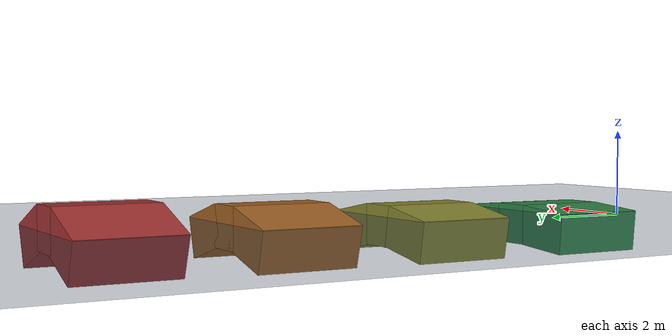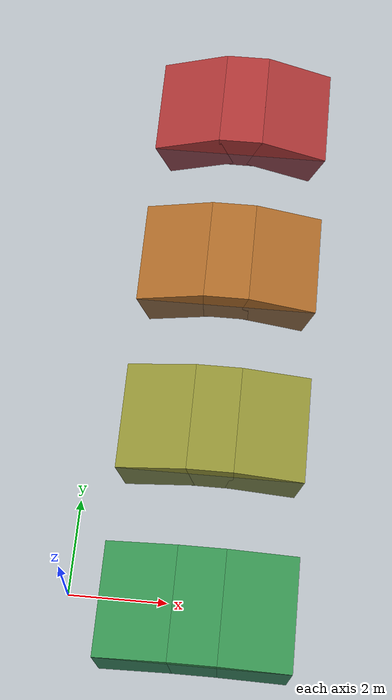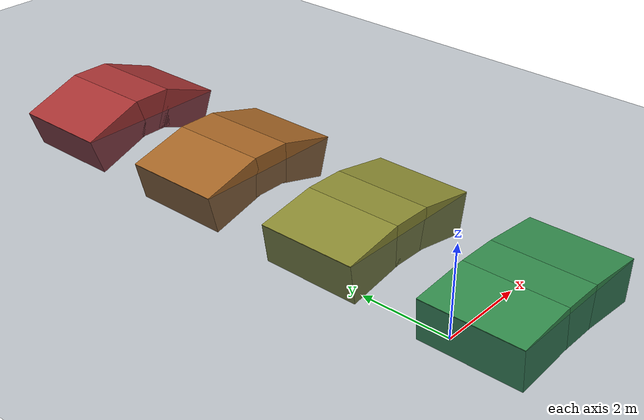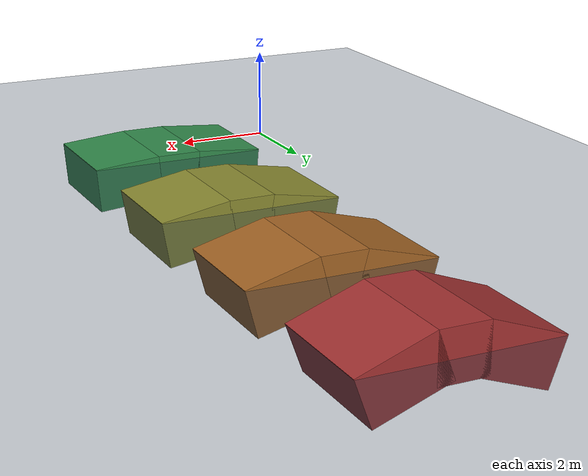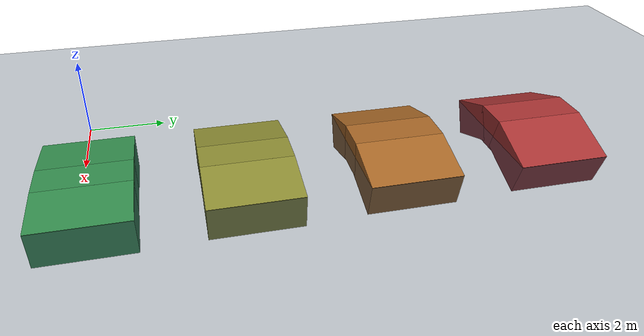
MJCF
<mujoco model="ground">

    <visual>
      <headlight diffuse="0.6 0.6 0.6"  ambient="0.3 0.3 0.3" specular="0 0 0"/>
      <rgba haze="0.15 0.25 0.35 1"/>
      <scale contactwidth="0.012" contactheight="0.004" forcewidth="0.004"/>
      <map force="0.0025"/>
    </visual>

    <asset>
        <texture type="skybox" builtin="gradient" rgb1="0.3 0.5 0.7" rgb2="0 0 0" width="512" height="3072"/>

        <texture name="texplane" type="2d" builtin="checker" rgb1=".2 .3 .4" rgb2=".1 0.15 0.2" width="512" height="512" mark="cross" markrgb=".8 .8 .8"/>
        <material name="matplane" reflectance="0.3" texture="texplane" texrepeat="1 1" texuniform="true"/>
        <material name="ramp_05" rgba="0.20 0.55 0.30 1"/>
        <material name="ramp_10" rgba="0.55 0.55 0.20 1"/>
        <material name="ramp_15" rgba="0.65 0.40 0.15 1"/>
        <material name="ramp_20" rgba="0.65 0.20 0.20 1"/>
    </asset>

    <worldbody>
      <light pos="0 0 2" dir="0 0 -1" directional="true"/>
      <body name="base_link">
        <geom name="floor" pos="0 0 0" size="0 0 .25" type="plane" material="matplane" condim="3" group="1"/>

        <!-- 5 deg lane, centre y = 0.0, crest height 0.1312 m -->
        <geom name="ramp_05_up" type="box" material="ramp_05" condim="3" group="1"
              size="0.752865 1.200000 0.500000"
              pos="1.393578 0.000000 -0.432481" quat="0.999048 0 -0.043619 0"/>
        <geom name="ramp_05_top" type="box" material="ramp_05" condim="3" group="1"
              size="0.501000 1.200000 0.500000"
              pos="2.600000 0.000000 -0.368767"/>
        <geom name="ramp_05_down" type="box" material="ramp_05" condim="3" group="1"
              size="0.752865 1.200000 0.500000"
              pos="3.806422 0.000000 -0.432481" quat="0.999048 0 0.043619 0"/>

        <!-- 10 deg lane, centre y = 4.0, crest height 0.2645 m -->
        <geom name="ramp_10_up" type="box" material="ramp_10" condim="3" group="1"
              size="0.761570 1.200000 0.500000"
              pos="1.436824 4.000000 -0.360159" quat="0.996195 0 -0.087156 0"/>
        <geom name="ramp_10_top" type="box" material="ramp_10" condim="3" group="1"
              size="0.501000 1.200000 0.500000"
              pos="2.600000 4.000000 -0.235510"/>
        <geom name="ramp_10_down" type="box" material="ramp_10" condim="3" group="1"
              size="0.761570 1.200000 0.500000"
              pos="3.763176 4.000000 -0.360159" quat="0.996195 0 0.087156 0"/>

        <!-- 15 deg lane, centre y = 8.0, crest height 0.4019 m -->
        <geom name="ramp_15_up" type="box" material="ramp_15" condim="3" group="1"
              size="0.776457 1.200000 0.500000"
              pos="1.479410 8.000000 -0.282001" quat="0.991445 0 -0.130526 0"/>
        <geom name="ramp_15_top" type="box" material="ramp_15" condim="3" group="1"
              size="0.501000 1.200000 0.500000"
              pos="2.600000 8.000000 -0.098076"/>
        <geom name="ramp_15_down" type="box" material="ramp_15" condim="3" group="1"
              size="0.776457 1.200000 0.500000"
              pos="3.720590 8.000000 -0.282001" quat="0.991445 0 0.130526 0"/>

        <!-- 20 deg lane, centre y = 12.0, crest height 0.5460 m -->
        <geom name="ramp_20_up" type="box" material="ramp_20" condim="3" group="1"
              size="0.798133 1.200000 0.500000"
              pos="1.521010 12.000000 -0.196869" quat="0.984808 0 -0.173648 0"/>
        <geom name="ramp_20_top" type="box" material="ramp_20" condim="3" group="1"
              size="0.501000 1.200000 0.500000"
              pos="2.600000 12.000000 0.045955"/>
        <geom name="ramp_20_down" type="box" material="ramp_20" condim="3" group="1"
              size="0.798133 1.200000 0.500000"
              pos="3.678990 12.000000 -0.196869" quat="0.984808 0 0.173648 0"/>
      </body>
    </worldbody>
</mujoco>
